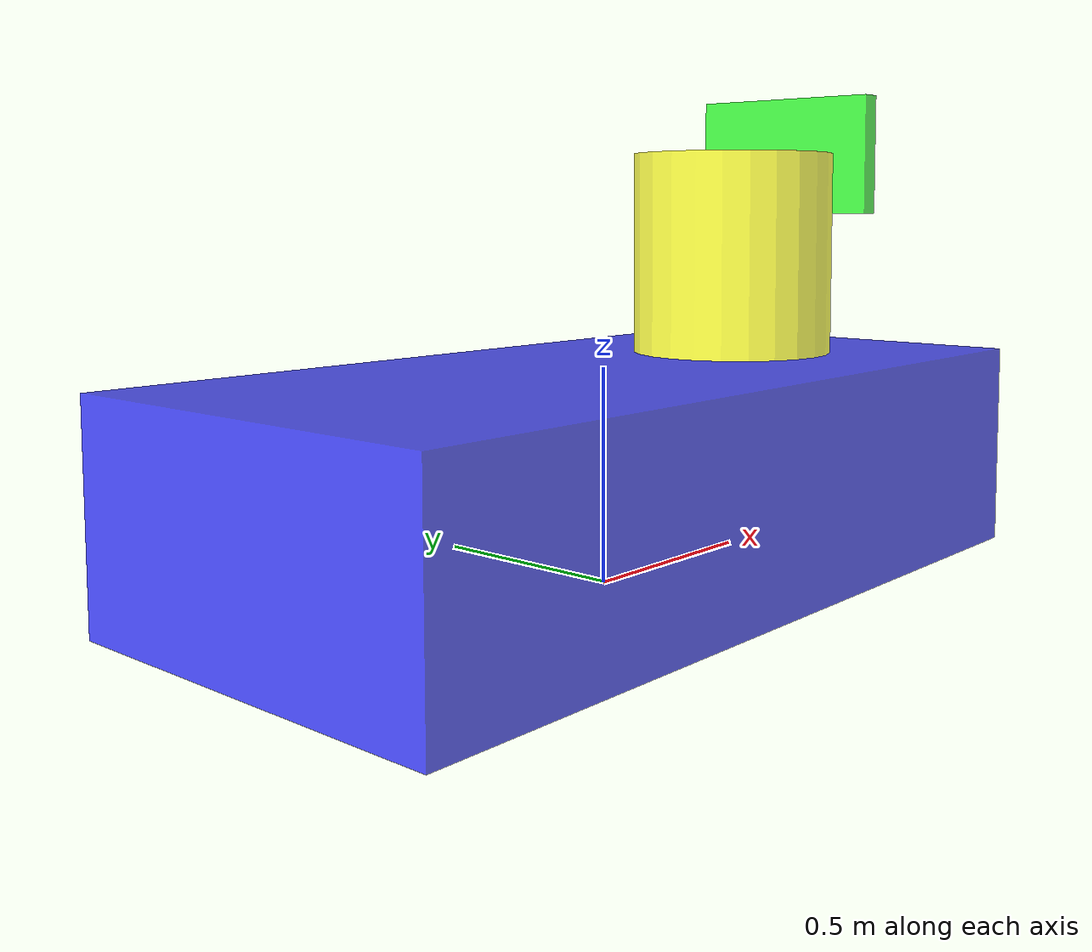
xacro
<?xml version="1.0"?>
<!--
  Robot: my_robot
  Generated by: LinkForge v1.4.0
  https://github.com/arounamounchili/linkforge
  Date: 2026-06-20 15:24:30
-->
<robot xmlns:xacro="http://www.ros.org/wiki/xacro" name="my_robot">
  <xacro:include filename="macros.xacro" />

  <!-- Materials -->
  <material name="blue">
    <color rgba="0 0 1 0.7" />
  </material>
  <material name="yellow">
    <color rgba="1 1 0 0.7" />
  </material>
  <material name="green">
    <color rgba="0 1 0 0.7" />
  </material>
  <!-- Links -->
  <link name="base_link"/>

  <link name="main_body_link">
    <xacro:box_inertial m="1" l="2" w="1" h="0.5" xyz="0 0 0.25" rpy="0 0 0"/>
    <visual>
      <geometry>
        <box size="2 1 0.5" />
      </geometry>
      <origin xyz="0 0 0.25" rpy="0 0 0" />
      <material name="blue" />
    </visual>
    <collision>
      <origin xyz="0 0 0.25" rpy="0 0 0" />
      <geometry>
        <box size="2 1 0.5" />
      </geometry>
    </collision>
  </link>
  <link name="neck_link">
    <xacro:cylinder_inertial m="0.5" r="0.25" l="0.5" xyz="0 0 0" rpy="0 0 0"/>
    <visual>
      <origin xyz="0 0 0" rpy="0 0 0" />
      <geometry>
        <cylinder radius="0.25" length="0.5" />
      </geometry>
      <material name="yellow" />
    </visual>
    <collision>
      <origin xyz="0 0 0" rpy="0 0 0" />
      <geometry>
        <cylinder radius="0.25" length="0.5" />
      </geometry>
    </collision>
  </link>
  <link name="head_link">
    <xacro:box_inertial m="1" l="0.5" w="0.3" h="0.05" xyz="0 0 0" rpy="1.57 0 1.57"/>
    <visual>
      <geometry>
        <box size="0.5 0.3 0.05" />
      </geometry>
      <origin xyz="0 0 0" rpy="1.57 0 1.57" />
      <material name="green" />
    </visual>
    <collision>
      <origin xyz="0 0 0" rpy="1.57 0 1.57" />
      <geometry>
        <box size="0.5 0.3 0.05" />
      </geometry>
    </collision>
  </link>
  <!-- Joints -->
  <joint name="base_link_joint" type="fixed">
    <parent link="base_link" />
    <child link="main_body_link" />
    <origin xyz="0 0 0" rpy="0 0 0" />
  </joint>
  <joint name="main_body_neck_joint" type="revolute">
    <origin xyz="0.5 0 0.75" rpy="0 0 0" />
    <parent link="main_body_link" />
    <child link="neck_link" />
    <axis xyz="0 0 1" />
    <dynamics damping="0.5" friction="0.5"/>
    <limit effort="10" velocity="1" lower="-3.141593" upper="3.141593" />
  </joint>
  <joint name="neck_head_joint" type="fixed">
    <origin xyz="0.25 0 0.25" rpy="0 0 0" />
    <parent link="neck_link" />
    <child link="head_link" />
  </joint>

  <xacro:include filename="mobile_base.ros2_control.xacro" />
</robot>

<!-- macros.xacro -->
<robot xmlns:xacro="http://www.ros.org/wiki/xacro">
    <xacro:macro name="box_inertial" params="m l w h xyz rpy">
        <inertial>
            <origin xyz="${xyz}" rpy="${rpy}"/>
            <mass value="${m}"/>
            <inertia ixx="${(12/m)*(h*h+l*l)}" ixy="0" ixz="0"
                     iyy="${(12/m)*(w*w+l*l)}" iyz="0"
                     izz="${(12/m)*(h*h+w*w)}"/>
        </inertial>
    </xacro:macro>

    <xacro:macro name="sphere_inertial" params="m r xyz rpy">
        <inertial>
            <origin xyz="${xyz}" rpy="${rpy}"/>
            <mass value="${m}"/>
            <inertia ixx="${(2/5)*m*r*r}" ixy="0" ixz="0"
                     iyy="${(2/5)*m*r*r}" iyz="0"
                     izz="${(2/5)*m*r*r}"/>
        </inertial>
    </xacro:macro>

    <xacro:macro name="cylinder_inertial" params="m r l xyz rpy">
        <inertial>
            <origin xyz="${xyz}" rpy="${rpy}"/>
            <mass value="${m}"/>
            <inertia ixx="${(1/12)*m*(3*r*r+l*l)}" ixy="0" ixz="0"
                     iyy="${(1/12)*m*(3*r*r+l*l)}" iyz="0"
                     izz="${(1/2)*m*r*r}"/>
        </inertial>
    </xacro:macro>
</robot>
